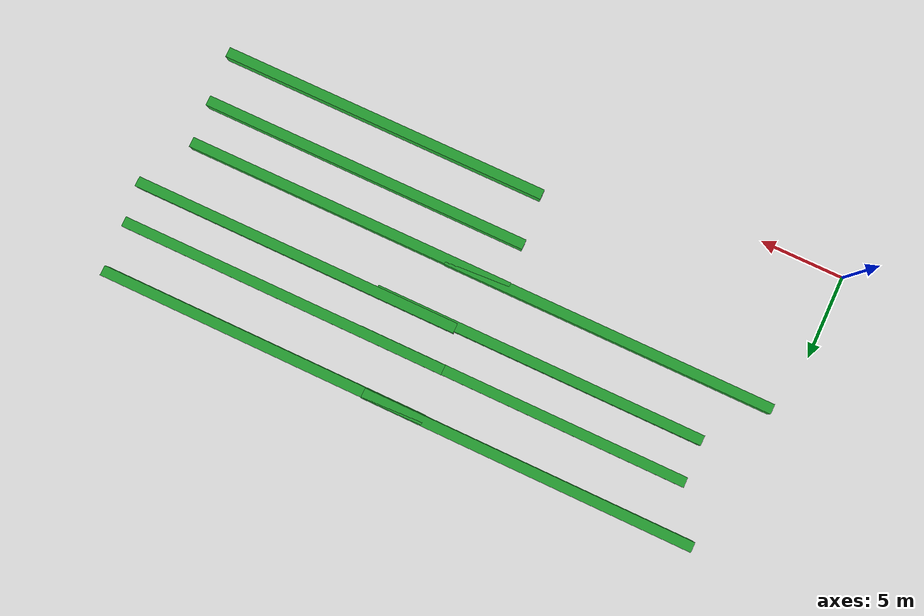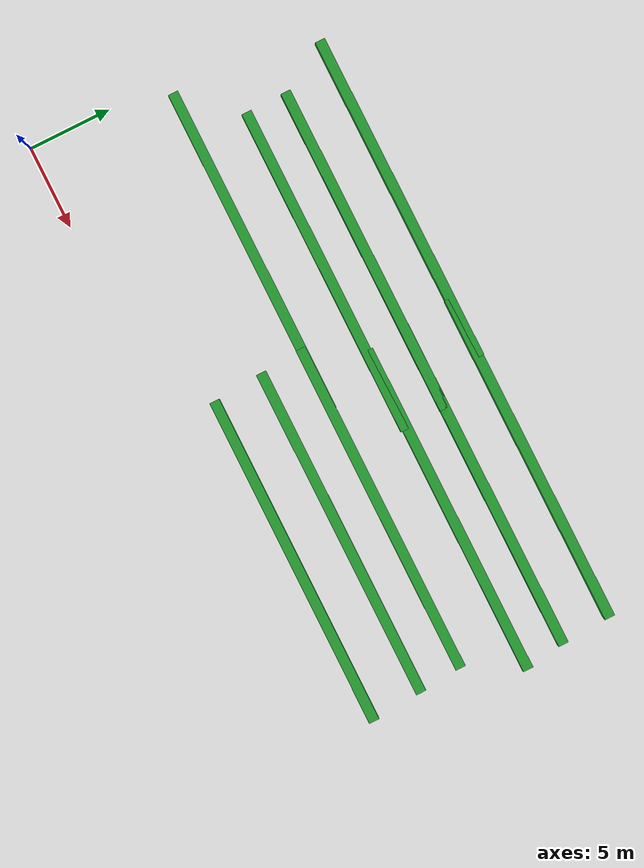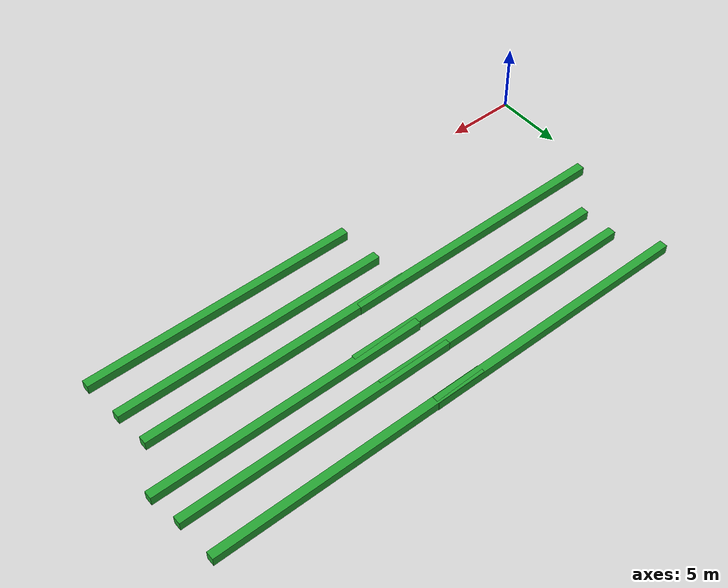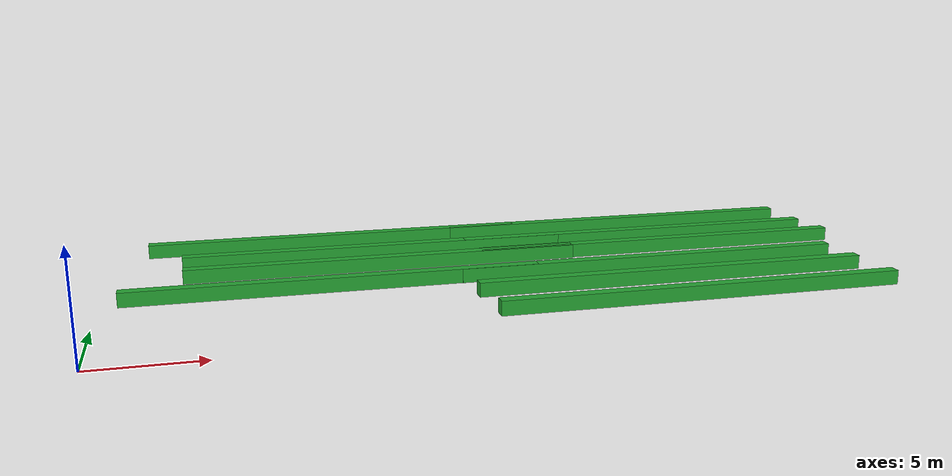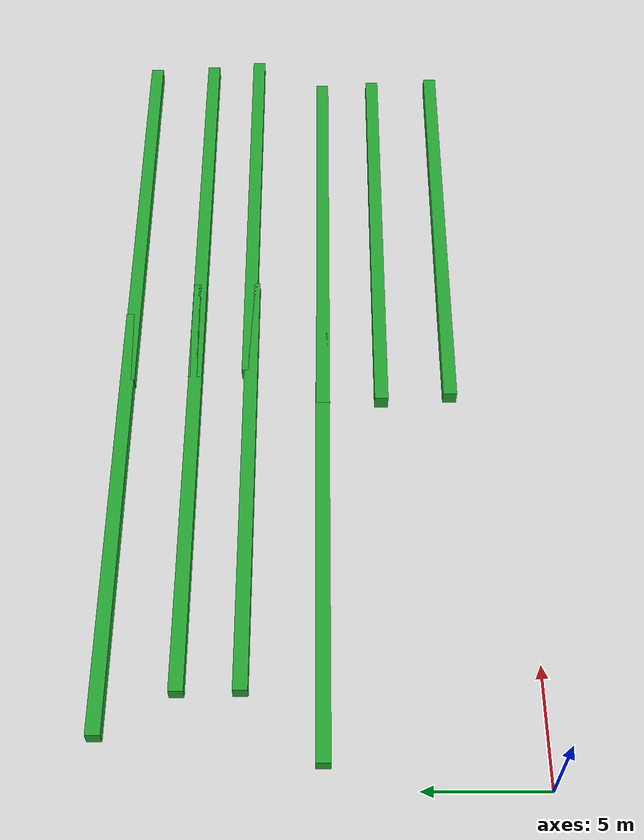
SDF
<sdf version="1.7">
 <world name="default">
  <light name="sun" type="directional">
   <pose>0 0 10 0 -0 0</pose>
   <diffuse>1 1 1 1</diffuse>
   <specular>0.2 0.2 0.2 1</specular>
   <attenuation>
    <range>1000</range>
    <constant>0.9</constant>
    <linear>0.01</linear>
    <quadratic>0.001</quadratic>
   </attenuation>
   <direction>-0.5 -0.5 -1</direction>
   <spot><inner_angle>0</inner_angle><outer_angle>0</outer_angle><falloff>0</falloff></spot>
  </light>
  <physics type="ode">
   <max_step_size>0.001</max_step_size>
   <real_time_factor>1</real_time_factor>
   <real_time_update_rate>1000</real_time_update_rate>
  </physics>
  <scene>
   <ambient>1 1 1 1</ambient>
   <background>1 1 1 1</background>
   <shadows>1</shadows>
   <sky><clouds><speed>12</speed></clouds></sky>
  </scene>
  <spherical_coordinates>
   <surface_model>EARTH_WGS84</surface_model>
   <latitude_deg>43.5956</latitude_deg>
   <longitude_deg>-80.4999</longitude_deg>
   <elevation>344</elevation>
   <heading_deg>0</heading_deg>
  </spherical_coordinates>
  <gravity>0 0 -9.8</gravity>
  <magnetic_field>6e-06 2.3e-05 -4.2e-05</magnetic_field>
  <atmosphere type="adiabatic"/>
  <model name="mato_0_clone">
   <link name="link">
    <inertial>
     <mass>1</mass>
     <inertia>
      <ixx>0.166667</ixx>
      <ixy>0</ixy>
      <ixz>0</ixz>
      <iyy>0.166667</iyy>
      <iyz>0</iyz>
      <izz>0.166667</izz>
     </inertia>
    </inertial>
    <visual name="visual">
     <geometry><box><size>20 0.6 0.7</size></box></geometry>
     <material>
      <script><name>Gazebo/Green</name><uri>file://media/materials/scripts/gazebo.material</uri></script>
      <shader type="vertex"><normal_map>__default__</normal_map></shader>
      <ambient>0.1 0.3 0 1</ambient>
      <diffuse>0 0 0 1</diffuse>
      <specular>0.01 0.01 0.01 1</specular>
      <emissive>0 0 0 1</emissive>
     </material>
    </visual>
    <collision name="collision">
     <geometry><box><size>20 0.6 0.7</size></box></geometry>
     <surface>
      <friction>
       <ode><mu>1</mu><mu2>1</mu2><fdir1>0 0 0</fdir1><slip1>0</slip1><slip2>0</slip2></ode>
       <torsional>
        <coefficient>1</coefficient>
        <patch_radius>0</patch_radius>
        <surface_radius>0</surface_radius>
        <use_patch_radius>1</use_patch_radius>
        <ode><slip>0</slip></ode>
       </torsional>
      </friction>
      <bounce><restitution_coefficient>0</restitution_coefficient><threshold>1e+06</threshold></bounce>
      <contact>
       <collide_without_contact>0</collide_without_contact>
       <collide_without_contact_bitmask>1</collide_without_contact_bitmask>
       <collide_bitmask>1</collide_bitmask>
       <ode>
        <soft_cfm>0</soft_cfm>
        <soft_erp>0.2</soft_erp>
        <kp>1e+13</kp>
        <kd>1</kd>
        <max_vel>0.01</max_vel>
        <min_depth>0</min_depth>
       </ode>
       <bullet>
        <split_impulse>1</split_impulse>
        <split_impulse_penetration_threshold>-0.01</split_impulse_penetration_threshold>
        <soft_cfm>0</soft_cfm>
        <soft_erp>0.2</soft_erp>
        <kp>1e+13</kp>
        <kd>1</kd>
       </bullet>
      </contact>
     </surface>
    </collision>
   </link>
   <static>1</static>
   <pose>13.7297 11.8189 0.319683 0 -0 0</pose>
  </model>
  <model name="mato_0_clone_clone">
   <link name="link">
    <inertial>
     <mass>1</mass>
     <inertia>
      <ixx>0.166667</ixx>
      <ixy>0</ixy>
      <ixz>0</ixz>
      <iyy>0.166667</iyy>
      <iyz>0</iyz>
      <izz>0.166667</izz>
     </inertia>
    </inertial>
    <visual name="visual">
     <geometry><box><size>20 0.6 0.7</size></box></geometry>
     <material>
      <script><name>Gazebo/Green</name><uri>file://media/materials/scripts/gazebo.material</uri></script>
      <shader type="vertex"><normal_map>__default__</normal_map></shader>
      <ambient>0.1 0.3 0 1</ambient>
      <diffuse>0 0 0 1</diffuse>
      <specular>0.01 0.01 0.01 1</specular>
      <emissive>0 0 0 1</emissive>
     </material>
    </visual>
    <collision name="collision">
     <geometry><box><size>20 0.6 0.7</size></box></geometry>
     <surface>
      <friction>
       <ode><mu>1</mu><mu2>1</mu2><fdir1>0 0 0</fdir1><slip1>0</slip1><slip2>0</slip2></ode>
       <torsional>
        <coefficient>1</coefficient>
        <patch_radius>0</patch_radius>
        <surface_radius>0</surface_radius>
        <use_patch_radius>1</use_patch_radius>
        <ode><slip>0</slip></ode>
       </torsional>
      </friction>
      <bounce><restitution_coefficient>0</restitution_coefficient><threshold>1e+06</threshold></bounce>
      <contact>
       <collide_without_contact>0</collide_without_contact>
       <collide_without_contact_bitmask>1</collide_without_contact_bitmask>
       <collide_bitmask>1</collide_bitmask>
       <ode>
        <soft_cfm>0</soft_cfm>
        <soft_erp>0.2</soft_erp>
        <kp>1e+13</kp>
        <kd>1</kd>
        <max_vel>0.01</max_vel>
        <min_depth>0</min_depth>
       </ode>
       <bullet>
        <split_impulse>1</split_impulse>
        <split_impulse_penetration_threshold>-0.01</split_impulse_penetration_threshold>
        <soft_cfm>0</soft_cfm>
        <soft_erp>0.2</soft_erp>
        <kp>1e+13</kp>
        <kd>1</kd>
       </bullet>
      </contact>
     </surface>
    </collision>
   </link>
   <static>1</static>
   <pose>27.4967 2.93289 0.319683 0 -0 0</pose>
  </model>
  <model name="mato_0_clone_clone_0">
   <link name="link">
    <inertial>
     <mass>1</mass>
     <inertia>
      <ixx>0.166667</ixx>
      <ixy>0</ixy>
      <ixz>0</ixz>
      <iyy>0.166667</iyy>
      <iyz>0</iyz>
      <izz>0.166667</izz>
     </inertia>
    </inertial>
    <visual name="visual">
     <geometry><box><size>20 0.6 0.7</size></box></geometry>
     <material>
      <script><name>Gazebo/Green</name><uri>file://media/materials/scripts/gazebo.material</uri></script>
      <shader type="vertex"><normal_map>__default__</normal_map></shader>
      <ambient>0.1 0.3 0 1</ambient>
      <diffuse>0 0 0 1</diffuse>
      <specular>0.01 0.01 0.01 1</specular>
      <emissive>0 0 0 1</emissive>
     </material>
    </visual>
    <collision name="collision">
     <geometry><box><size>20 0.6 0.7</size></box></geometry>
     <surface>
      <friction>
       <ode><mu>1</mu><mu2>1</mu2><fdir1>0 0 0</fdir1><slip1>0</slip1><slip2>0</slip2></ode>
       <torsional>
        <coefficient>1</coefficient>
        <patch_radius>0</patch_radius>
        <surface_radius>0</surface_radius>
        <use_patch_radius>1</use_patch_radius>
        <ode><slip>0</slip></ode>
       </torsional>
      </friction>
      <bounce><restitution_coefficient>0</restitution_coefficient><threshold>1e+06</threshold></bounce>
      <contact>
       <collide_without_contact>0</collide_without_contact>
       <collide_without_contact_bitmask>1</collide_without_contact_bitmask>
       <collide_bitmask>1</collide_bitmask>
       <ode>
        <soft_cfm>0</soft_cfm>
        <soft_erp>0.2</soft_erp>
        <kp>1e+13</kp>
        <kd>1</kd>
        <max_vel>0.01</max_vel>
        <min_depth>0</min_depth>
       </ode>
       <bullet>
        <split_impulse>1</split_impulse>
        <split_impulse_penetration_threshold>-0.01</split_impulse_penetration_threshold>
        <soft_cfm>0</soft_cfm>
        <soft_erp>0.2</soft_erp>
        <kp>1e+13</kp>
        <kd>1</kd>
       </bullet>
      </contact>
     </surface>
    </collision>
   </link>
   <static>1</static>
   <pose>27.245 5.98848 0.319683 0 -0 0</pose>
  </model>
  <model name="mato_0_clone_clone_1">
   <link name="link">
    <inertial>
     <mass>1</mass>
     <inertia>
      <ixx>0.166667</ixx>
      <ixy>0</ixy>
      <ixz>0</ixz>
      <iyy>0.166667</iyy>
      <iyz>0</iyz>
      <izz>0.166667</izz>
     </inertia>
    </inertial>
    <visual name="visual">
     <geometry><box><size>20 0.6 0.7</size></box></geometry>
     <material>
      <script><name>Gazebo/Green</name><uri>file://media/materials/scripts/gazebo.material</uri></script>
      <shader type="vertex"><normal_map>__default__</normal_map></shader>
      <ambient>0.1 0.3 0 1</ambient>
      <diffuse>0 0 0 1</diffuse>
      <specular>0.01 0.01 0.01 1</specular>
      <emissive>0 0 0 1</emissive>
     </material>
    </visual>
    <collision name="collision">
     <geometry><box><size>20 0.6 0.7</size></box></geometry>
     <surface>
      <friction>
       <ode><mu>1</mu><mu2>1</mu2><fdir1>0 0 0</fdir1><slip1>0</slip1><slip2>0</slip2></ode>
       <torsional>
        <coefficient>1</coefficient>
        <patch_radius>0</patch_radius>
        <surface_radius>0</surface_radius>
        <use_patch_radius>1</use_patch_radius>
        <ode><slip>0</slip></ode>
       </torsional>
      </friction>
      <bounce><restitution_coefficient>0</restitution_coefficient><threshold>1e+06</threshold></bounce>
      <contact>
       <collide_without_contact>0</collide_without_contact>
       <collide_without_contact_bitmask>1</collide_without_contact_bitmask>
       <collide_bitmask>1</collide_bitmask>
       <ode>
        <soft_cfm>0</soft_cfm>
        <soft_erp>0.2</soft_erp>
        <kp>1e+13</kp>
        <kd>1</kd>
        <max_vel>0.01</max_vel>
        <min_depth>0</min_depth>
       </ode>
       <bullet>
        <split_impulse>1</split_impulse>
        <split_impulse_penetration_threshold>-0.01</split_impulse_penetration_threshold>
        <soft_cfm>0</soft_cfm>
        <soft_erp>0.2</soft_erp>
        <kp>1e+13</kp>
        <kd>1</kd>
       </bullet>
      </contact>
     </surface>
    </collision>
   </link>
   <static>1</static>
   <pose>27.0135 8.57806 0.319683 0 -0 0</pose>
  </model>
  <model name="mato_0_clone_clone_2">
   <link name="link">
    <inertial>
     <mass>1</mass>
     <inertia>
      <ixx>0.166667</ixx>
      <ixy>0</ixy>
      <ixz>0</ixz>
      <iyy>0.166667</iyy>
      <iyz>0</iyz>
      <izz>0.166667</izz>
     </inertia>
    </inertial>
    <visual name="visual">
     <geometry><box><size>20 0.6 0.7</size></box></geometry>
     <material>
      <script><name>Gazebo/Green</name><uri>file://media/materials/scripts/gazebo.material</uri></script>
      <shader type="vertex"><normal_map>__default__</normal_map></shader>
      <ambient>0.1 0.3 0 1</ambient>
      <diffuse>0 0 0 1</diffuse>
      <specular>0.01 0.01 0.01 1</specular>
      <emissive>0 0 0 1</emissive>
     </material>
    </visual>
    <collision name="collision">
     <geometry><box><size>20 0.6 0.7</size></box></geometry>
     <surface>
      <friction>
       <ode><mu>1</mu><mu2>1</mu2><fdir1>0 0 0</fdir1><slip1>0</slip1><slip2>0</slip2></ode>
       <torsional>
        <coefficient>1</coefficient>
        <patch_radius>0</patch_radius>
        <surface_radius>0</surface_radius>
        <use_patch_radius>1</use_patch_radius>
        <ode><slip>0</slip></ode>
       </torsional>
      </friction>
      <bounce><restitution_coefficient>0</restitution_coefficient><threshold>1e+06</threshold></bounce>
      <contact>
       <collide_without_contact>0</collide_without_contact>
       <collide_without_contact_bitmask>1</collide_without_contact_bitmask>
       <collide_bitmask>1</collide_bitmask>
       <ode>
        <soft_cfm>0</soft_cfm>
        <soft_erp>0.2</soft_erp>
        <kp>1e+13</kp>
        <kd>1</kd>
        <max_vel>0.01</max_vel>
        <min_depth>0</min_depth>
       </ode>
       <bullet>
        <split_impulse>1</split_impulse>
        <split_impulse_penetration_threshold>-0.01</split_impulse_penetration_threshold>
        <soft_cfm>0</soft_cfm>
        <soft_erp>0.2</soft_erp>
        <kp>1e+13</kp>
        <kd>1</kd>
       </bullet>
      </contact>
     </surface>
    </collision>
   </link>
   <static>1</static>
   <pose>28.7771 11.9268 0.319683 0 -0 0</pose>
  </model>
  <model name="mato_0_clone_clone_3">
   <link name="link">
    <inertial>
     <mass>1</mass>
     <inertia>
      <ixx>0.166667</ixx>
      <ixy>0</ixy>
      <ixz>0</ixz>
      <iyy>0.166667</iyy>
      <iyz>0</iyz>
      <izz>0.166667</izz>
     </inertia>
    </inertial>
    <visual name="visual">
     <geometry><box><size>20 0.6 0.7</size></box></geometry>
     <material>
      <script><name>Gazebo/Green</name><uri>file://media/materials/scripts/gazebo.material</uri></script>
      <shader type="vertex"><normal_map>__default__</normal_map></shader>
      <ambient>0.1 0.3 0 1</ambient>
      <diffuse>0 0 0 1</diffuse>
      <specular>0.01 0.01 0.01 1</specular>
      <emissive>0 0 0 1</emissive>
     </material>
    </visual>
    <collision name="collision">
     <geometry><box><size>20 0.6 0.7</size></box></geometry>
     <surface>
      <friction>
       <ode><mu>1</mu><mu2>1</mu2><fdir1>0 0 0</fdir1><slip1>0</slip1><slip2>0</slip2></ode>
       <torsional>
        <coefficient>1</coefficient>
        <patch_radius>0</patch_radius>
        <surface_radius>0</surface_radius>
        <use_patch_radius>1</use_patch_radius>
        <ode><slip>0</slip></ode>
       </torsional>
      </friction>
      <bounce><restitution_coefficient>0</restitution_coefficient><threshold>1e+06</threshold></bounce>
      <contact>
       <collide_without_contact>0</collide_without_contact>
       <collide_without_contact_bitmask>1</collide_without_contact_bitmask>
       <collide_bitmask>1</collide_bitmask>
       <ode>
        <soft_cfm>0</soft_cfm>
        <soft_erp>0.2</soft_erp>
        <kp>1e+13</kp>
        <kd>1</kd>
        <max_vel>0.01</max_vel>
        <min_depth>0</min_depth>
       </ode>
       <bullet>
        <split_impulse>1</split_impulse>
        <split_impulse_penetration_threshold>-0.01</split_impulse_penetration_threshold>
        <soft_cfm>0</soft_cfm>
        <soft_erp>0.2</soft_erp>
        <kp>1e+13</kp>
        <kd>1</kd>
       </bullet>
      </contact>
     </surface>
    </collision>
   </link>
   <static>1</static>
   <pose>28.4145 14.3199 0.319683 0 -0 0</pose>
  </model>
  <model name="mato_0_clone_clone_4">
   <link name="link">
    <inertial>
     <mass>1</mass>
     <inertia>
      <ixx>0.166667</ixx>
      <ixy>0</ixy>
      <ixz>0</ixz>
      <iyy>0.166667</iyy>
      <iyz>0</iyz>
      <izz>0.166667</izz>
     </inertia>
    </inertial>
    <visual name="visual">
     <geometry><box><size>20 0.6 0.7</size></box></geometry>
     <material>
      <script><name>Gazebo/Green</name><uri>file://media/materials/scripts/gazebo.material</uri></script>
      <shader type="vertex"><normal_map>__default__</normal_map></shader>
      <ambient>0.1 0.3 0 1</ambient>
      <diffuse>0 0 0 1</diffuse>
      <specular>0.01 0.01 0.01 1</specular>
      <emissive>0 0 0 1</emissive>
     </material>
    </visual>
    <collision name="collision">
     <geometry><box><size>20 0.6 0.7</size></box></geometry>
     <surface>
      <friction>
       <ode><mu>1</mu><mu2>1</mu2><fdir1>0 0 0</fdir1><slip1>0</slip1><slip2>0</slip2></ode>
       <torsional>
        <coefficient>1</coefficient>
        <patch_radius>0</patch_radius>
        <surface_radius>0</surface_radius>
        <use_patch_radius>1</use_patch_radius>
        <ode><slip>0</slip></ode>
       </torsional>
      </friction>
      <bounce><restitution_coefficient>0</restitution_coefficient><threshold>1e+06</threshold></bounce>
      <contact>
       <collide_without_contact>0</collide_without_contact>
       <collide_without_contact_bitmask>1</collide_without_contact_bitmask>
       <collide_bitmask>1</collide_bitmask>
       <ode>
        <soft_cfm>0</soft_cfm>
        <soft_erp>0.2</soft_erp>
        <kp>1e+13</kp>
        <kd>1</kd>
        <max_vel>0.01</max_vel>
        <min_depth>0</min_depth>
       </ode>
       <bullet>
        <split_impulse>1</split_impulse>
        <split_impulse_penetration_threshold>-0.01</split_impulse_penetration_threshold>
        <soft_cfm>0</soft_cfm>
        <soft_erp>0.2</soft_erp>
        <kp>1e+13</kp>
        <kd>1</kd>
       </bullet>
      </contact>
     </surface>
    </collision>
   </link>
   <static>1</static>
   <pose>28.235 17.3157 0.319683 0 -0 0</pose>
  </model>
  <model name="mato_0_clone_clone_5">
   <link name="link">
    <inertial>
     <mass>1</mass>
     <inertia>
      <ixx>0.166667</ixx>
      <ixy>0</ixy>
      <ixz>0</ixz>
      <iyy>0.166667</iyy>
      <iyz>0</iyz>
      <izz>0.166667</izz>
     </inertia>
    </inertial>
    <visual name="visual">
     <geometry><box><size>20 0.6 0.7</size></box></geometry>
     <material>
      <script><name>Gazebo/Green</name><uri>file://media/materials/scripts/gazebo.material</uri></script>
      <shader type="vertex"><normal_map>__default__</normal_map></shader>
      <ambient>0.1 0.3 0 1</ambient>
      <diffuse>0 0 0 1</diffuse>
      <specular>0.01 0.01 0.01 1</specular>
      <emissive>0 0 0 1</emissive>
     </material>
    </visual>
    <collision name="collision">
     <geometry><box><size>20 0.6 0.7</size></box></geometry>
     <surface>
      <friction>
       <ode><mu>1</mu><mu2>1</mu2><fdir1>0 0 0</fdir1><slip1>0</slip1><slip2>0</slip2></ode>
       <torsional>
        <coefficient>1</coefficient>
        <patch_radius>0</patch_radius>
        <surface_radius>0</surface_radius>
        <use_patch_radius>1</use_patch_radius>
        <ode><slip>0</slip></ode>
       </torsional>
      </friction>
      <bounce><restitution_coefficient>0</restitution_coefficient><threshold>1e+06</threshold></bounce>
      <contact>
       <collide_without_contact>0</collide_without_contact>
       <collide_without_contact_bitmask>1</collide_without_contact_bitmask>
       <collide_bitmask>1</collide_bitmask>
       <ode>
        <soft_cfm>0</soft_cfm>
        <soft_erp>0.2</soft_erp>
        <kp>1e+13</kp>
        <kd>1</kd>
        <max_vel>0.01</max_vel>
        <min_depth>0</min_depth>
       </ode>
       <bullet>
        <split_impulse>1</split_impulse>
        <split_impulse_penetration_threshold>-0.01</split_impulse_penetration_threshold>
        <soft_cfm>0</soft_cfm>
        <soft_erp>0.2</soft_erp>
        <kp>1e+13</kp>
        <kd>1</kd>
       </bullet>
      </contact>
     </surface>
    </collision>
   </link>
   <static>1</static>
   <pose>10.886 8.60281 0.319683 0 -0 0</pose>
  </model>
  <model name="mato_0_clone_clone_6">
   <link name="link">
    <inertial>
     <mass>1</mass>
     <inertia>
      <ixx>0.166667</ixx>
      <ixy>0</ixy>
      <ixz>0</ixz>
      <iyy>0.166667</iyy>
      <iyz>0</iyz>
      <izz>0.166667</izz>
     </inertia>
    </inertial>
    <visual name="visual">
     <geometry><box><size>20 0.6 0.7</size></box></geometry>
     <material>
      <script><name>Gazebo/Green</name><uri>file://media/materials/scripts/gazebo.material</uri></script>
      <shader type="vertex"><normal_map>__default__</normal_map></shader>
      <ambient>0.1 0.3 0 1</ambient>
      <diffuse>0 0 0 1</diffuse>
      <specular>0.01 0.01 0.01 1</specular>
      <emissive>0 0 0 1</emissive>
     </material>
    </visual>
    <collision name="collision">
     <geometry><box><size>20 0.6 0.7</size></box></geometry>
     <surface>
      <friction>
       <ode><mu>1</mu><mu2>1</mu2><fdir1>0 0 0</fdir1><slip1>0</slip1><slip2>0</slip2></ode>
       <torsional>
        <coefficient>1</coefficient>
        <patch_radius>0</patch_radius>
        <surface_radius>0</surface_radius>
        <use_patch_radius>1</use_patch_radius>
        <ode><slip>0</slip></ode>
       </torsional>
      </friction>
      <bounce><restitution_coefficient>0</restitution_coefficient><threshold>1e+06</threshold></bounce>
      <contact>
       <collide_without_contact>0</collide_without_contact>
       <collide_without_contact_bitmask>1</collide_without_contact_bitmask>
       <collide_bitmask>1</collide_bitmask>
       <ode>
        <soft_cfm>0</soft_cfm>
        <soft_erp>0.2</soft_erp>
        <kp>1e+13</kp>
        <kd>1</kd>
        <max_vel>0.01</max_vel>
        <min_depth>0</min_depth>
       </ode>
       <bullet>
        <split_impulse>1</split_impulse>
        <split_impulse_penetration_threshold>-0.01</split_impulse_penetration_threshold>
        <soft_cfm>0</soft_cfm>
        <soft_erp>0.2</soft_erp>
        <kp>1e+13</kp>
        <kd>1</kd>
       </bullet>
      </contact>
     </surface>
    </collision>
   </link>
   <static>1</static>
   <pose>13.6813 14.3066 0.319683 0 -0 0</pose>
  </model>
  <model name="mato_0_clone_clone_7">
   <link name="link">
    <inertial>
     <mass>1</mass>
     <inertia>
      <ixx>0.166667</ixx>
      <ixy>0</ixy>
      <ixz>0</ixz>
      <iyy>0.166667</iyy>
      <iyz>0</iyz>
      <izz>0.166667</izz>
     </inertia>
    </inertial>
    <visual name="visual">
     <geometry><box><size>20 0.6 0.7</size></box></geometry>
     <material>
      <script><name>Gazebo/Green</name><uri>file://media/materials/scripts/gazebo.material</uri></script>
      <shader type="vertex"><normal_map>__default__</normal_map></shader>
      <ambient>0.1 0.3 0 1</ambient>
      <diffuse>0 0 0 1</diffuse>
      <specular>0.01 0.01 0.01 1</specular>
      <emissive>0 0 0 1</emissive>
     </material>
    </visual>
    <collision name="collision">
     <geometry><box><size>20 0.6 0.7</size></box></geometry>
     <surface>
      <friction>
       <ode><mu>1</mu><mu2>1</mu2><fdir1>0 0 0</fdir1><slip1>0</slip1><slip2>0</slip2></ode>
       <torsional>
        <coefficient>1</coefficient>
        <patch_radius>0</patch_radius>
        <surface_radius>0</surface_radius>
        <use_patch_radius>1</use_patch_radius>
        <ode><slip>0</slip></ode>
       </torsional>
      </friction>
      <bounce><restitution_coefficient>0</restitution_coefficient><threshold>1e+06</threshold></bounce>
      <contact>
       <collide_without_contact>0</collide_without_contact>
       <collide_without_contact_bitmask>1</collide_without_contact_bitmask>
       <collide_bitmask>1</collide_bitmask>
       <ode>
        <soft_cfm>0</soft_cfm>
        <soft_erp>0.2</soft_erp>
        <kp>1e+13</kp>
        <kd>1</kd>
        <max_vel>0.01</max_vel>
        <min_depth>0</min_depth>
       </ode>
       <bullet>
        <split_impulse>1</split_impulse>
        <split_impulse_penetration_threshold>-0.01</split_impulse_penetration_threshold>
        <soft_cfm>0</soft_cfm>
        <soft_erp>0.2</soft_erp>
        <kp>1e+13</kp>
        <kd>1</kd>
       </bullet>
      </contact>
     </surface>
    </collision>
   </link>
   <static>1</static>
   <pose>11.929 17.3464 0.319683 0 -0 0</pose>
  </model>
 </world>
</sdf>
